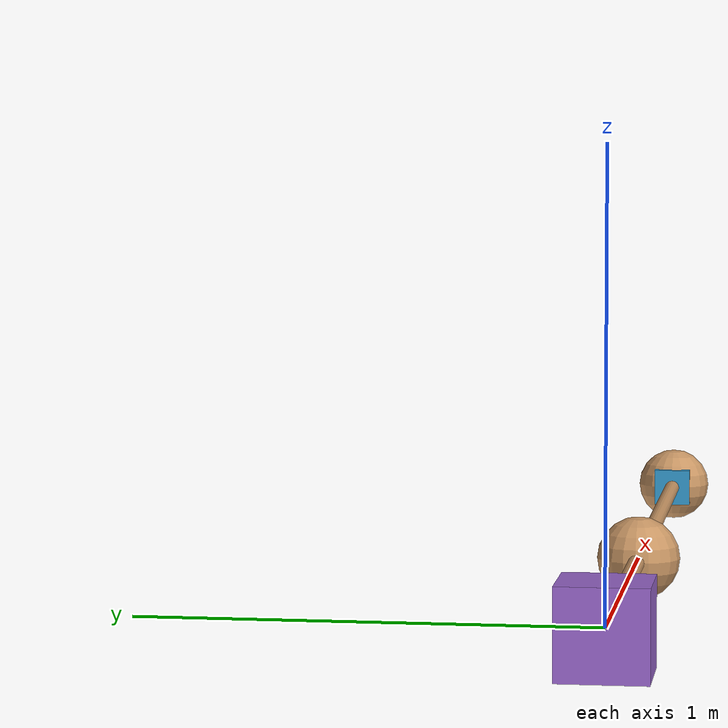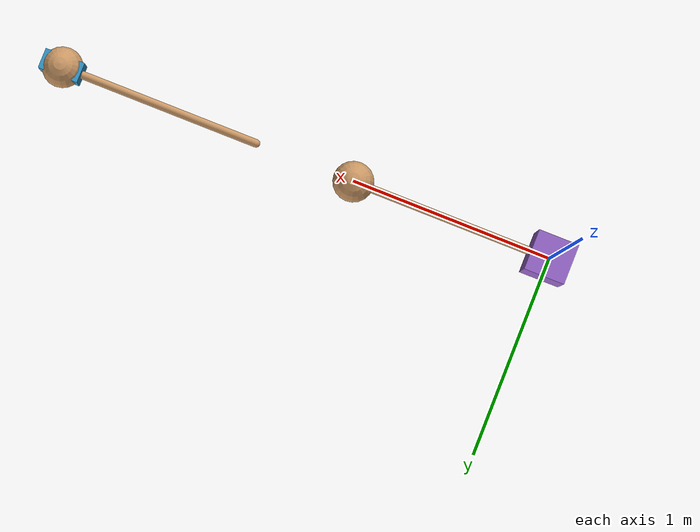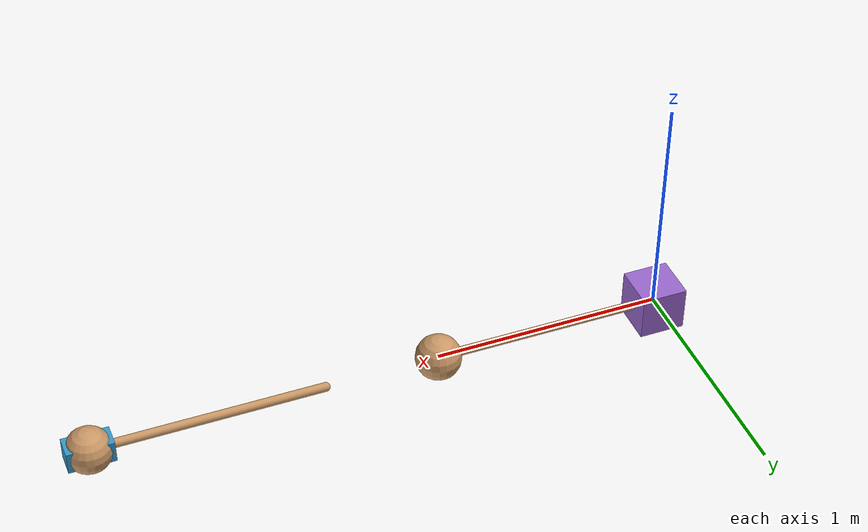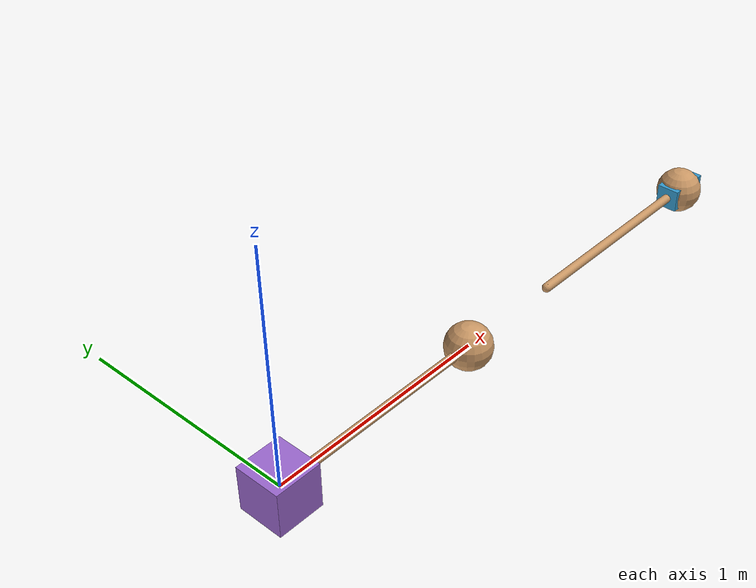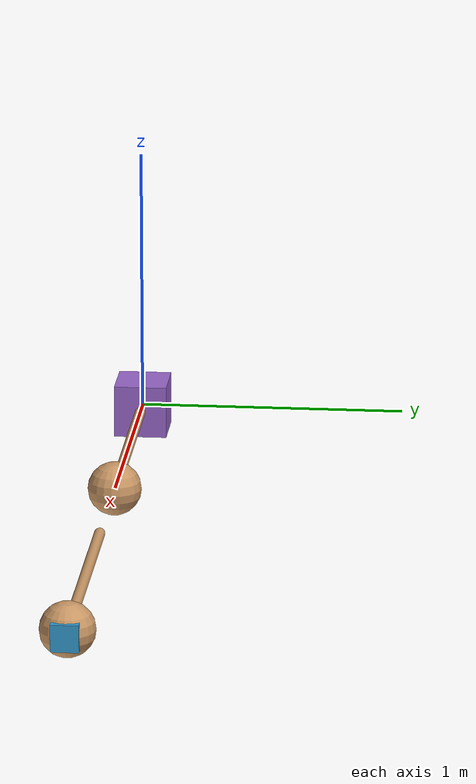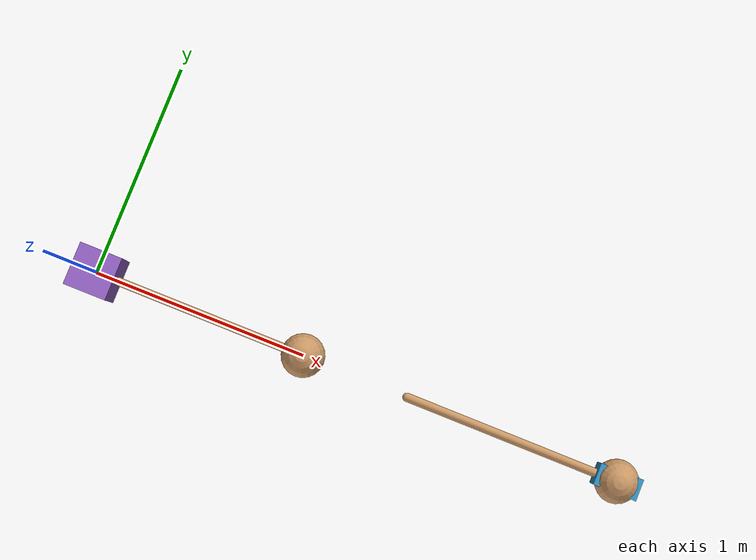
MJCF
<mujoco>
  <visual>
    <global elevation="-20"/>
    <headlight ambient=".3 .3 .3" diffuse=".9 .9 .9"/>
  </visual>

  <default>
    <geom rgba="0.8 0.6 .4 1"/>
  </default>

  <worldbody>
    <!-- Left pendulum (same as before, with motor) -->
    <body name="link1">
      <!-- inertia of link1 is 1.0 -->
      <joint name="link1" axis="0 -1 0"/>
      <geom type="capsule" size=".02" fromto="0 0 0 1 0 0" mass="0"/>
      <geom type="sphere" size=".1" mass="1" pos="1 0 0"/>
    </body>

    <body name="motor1">
      <!-- inertia of motor1 is 1/12 * m * (0.2^2 + 0.2^2) = 0.2 -->
      <joint name="motor1" axis="0 -1 0"/>
      <geom type="box" size=".1 .1 .1" mass="30" contype="0" conaffinity="0" rgba=".6 .4 .8 1"/>
    </body>

    <!-- Right pendulum (link2) -->
    <body name="link2" pos="1.5 0 0">
      <!-- reflected inertia -->
      <joint name="link2" armature="1.8" axis="0 -1 0" damping="0.2"/>
      <geom type="capsule" size=".02" fromto="0 0 0 1 0 0" mass="0"/>
      <geom type="sphere" size=".1" mass="1" pos="1 0 0"/>

      <!-- Attached body at pendulum tip -->
      <body name="attached_body" pos="1 0 0">
        <geom type="box" size=".1 .05 .05" mass="0.5" rgba=".2 .6 .8 1"/>
      </body>
    </body>
  </worldbody>

  <equality>
    <!-- gear ratio between motor1 and link1 is 3:1 -->
    <joint joint1="motor1" joint2="link1" polycoef="0 3"/>
  </equality>

  <actuator>
    <!-- actuator for the first pendulum only -->
    <position name="link1" joint="motor1" kp=".3" ctrlrange="-5 5"/>
  </actuator>

  <keyframe>
    <!-- initial angles: first pendulum neutral, right one tilted -->
    <key name="initial_pose" qpos="0 0 0.4"/>
  </keyframe>
</mujoco>
